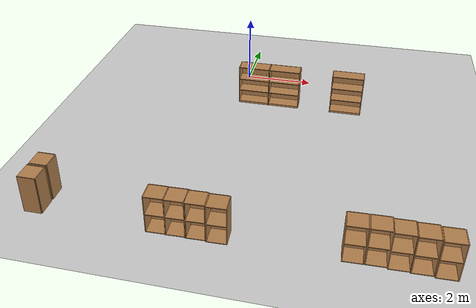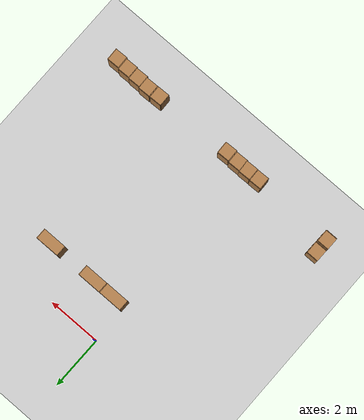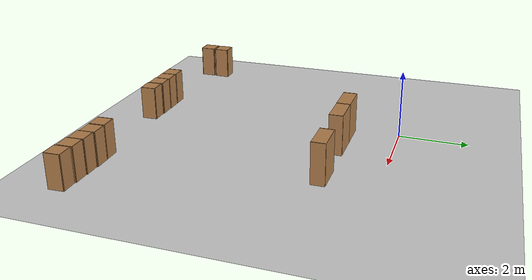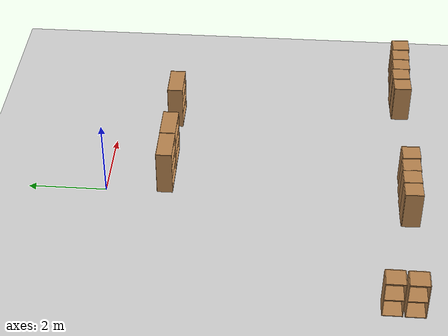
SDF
<sdf version="1.7">
 <world name="default">
  <model name="ground_plane">
   <static>1</static>
   <link name="link">
    <collision name="collision">
     <geometry><plane><normal>0 0 1</normal><size>100 100</size></plane></geometry>
     <surface>
      <contact><collide_bitmask>65535</collide_bitmask></contact>
      <friction><ode><mu>100</mu><mu2>50</mu2></ode></friction>
     </surface>
    </collision>
    <visual name="visual">
     <cast_shadows>0</cast_shadows>
     <geometry><plane><normal>0 0 1</normal><size>100 100</size></plane></geometry>
     <material>
      <script><uri>file://media/materials/scripts/gazebo.material</uri><name>Gazebo/Grey</name></script>
     </material>
    </visual>
   </link>
  </model>
  <model name="cabinet">
   <static>1</static>
   <link name="cabinet_bottom_plate">
    <inertial>
     <pose>0 0 -1 0 -0 0</pose>
     <inertia><ixx>2.05</ixx><ixy>0</ixy><ixz>0</ixz><iyy>2.05</iyy><iyz>0</iyz><izz>2.05</izz></inertia>
     <mass>25</mass>
    </inertial>
    <collision name="cabinet_bottom_plate_geom">
     <pose>0 0 0.01 0 -0 0</pose>
     <geometry><box><size>0.45 0.45 0.02</size></box></geometry>
    </collision>
    <visual name="cabinet_bottom_plate_geom_visual">
     <pose>0 0 0.01 0 -0 0</pose>
     <geometry><box><size>0.45 0.45 0.02</size></box></geometry>
     <material>
      <script><uri>file://media/materials/scripts/gazebo.material</uri><name>Gazebo/Wood</name></script>
     </material>
    </visual>
    <collision name="cabinet_bottom_plate_geom_cabinet_back_plate">
     <pose>0.235 0 0.51 0 -0 0</pose>
     <geometry><box><size>0.02 0.45 1.02</size></box></geometry>
    </collision>
    <visual name="cabinet_bottom_plate_geom_cabinet_back_plate_visual">
     <pose>0.235 0 0.51 0 -0 0</pose>
     <geometry><box><size>0.02 0.45 1.02</size></box></geometry>
     <material>
      <script><uri>file://media/materials/scripts/gazebo.material</uri><name>Gazebo/Wood</name></script>
     </material>
    </visual>
    <collision name="cabinet_bottom_plate_geom_cabinet_left_plate">
     <pose>0 0.235 0.51 0 -0 0</pose>
     <geometry><box><size>0.45 0.02 1.02</size></box></geometry>
    </collision>
    <visual name="cabinet_bottom_plate_geom_cabinet_left_plate_visual">
     <pose>0 0.235 0.51 0 -0 0</pose>
     <geometry><box><size>0.45 0.02 1.02</size></box></geometry>
     <material>
      <script><uri>file://media/materials/scripts/gazebo.material</uri><name>Gazebo/Wood</name></script>
     </material>
    </visual>
    <collision name="cabinet_bottom_plate_geom_cabinet_middle_plate">
     <pose>0 0 0.51 0 -0 0</pose>
     <geometry><box><size>0.45 0.45 0.02</size></box></geometry>
    </collision>
    <visual name="cabinet_bottom_plate_geom_cabinet_middle_plate_visual">
     <pose>0 0 0.51 0 -0 0</pose>
     <geometry><box><size>0.45 0.45 0.02</size></box></geometry>
     <material>
      <script><uri>file://media/materials/scripts/gazebo.material</uri><name>Gazebo/Wood</name></script>
     </material>
    </visual>
    <collision name="cabinet_bottom_plate_geom_cabinet_right_plate">
     <pose>0 -0.235 0.51 0 -0 0</pose>
     <geometry><box><size>0.45 0.02 1.02</size></box></geometry>
    </collision>
    <visual name="cabinet_bottom_plate_geom_cabinet_right_plate_visual">
     <pose>0 -0.235 0.51 0 -0 0</pose>
     <geometry><box><size>0.45 0.02 1.02</size></box></geometry>
     <material>
      <script><uri>file://media/materials/scripts/gazebo.material</uri><name>Gazebo/Wood</name></script>
     </material>
    </visual>
    <collision name="cabinet_bottom_plate_geom_cabinet_top_plate">
     <pose>0 0 1.01 0 -0 0</pose>
     <geometry><box><size>0.45 0.45 0.02</size></box></geometry>
    </collision>
    <visual name="cabinet_bottom_plate_geom_cabinet_top_plate_visual">
     <pose>0 0 1.01 0 -0 0</pose>
     <geometry><box><size>0.45 0.45 0.02</size></box></geometry>
     <material>
      <script><uri>file://media/materials/scripts/gazebo.material</uri><name>Gazebo/Wood</name></script>
     </material>
    </visual>
   </link>
   <pose>-3.67458 -7.64676 0 0 -0 0</pose>
  </model>
  <model name="cabinet_clone">
   <static>1</static>
   <link name="cabinet_bottom_plate">
    <inertial>
     <pose>0 0 -1 0 -0 0</pose>
     <inertia><ixx>2.05</ixx><ixy>0</ixy><ixz>0</ixz><iyy>2.05</iyy><iyz>0</iyz><izz>2.05</izz></inertia>
     <mass>25</mass>
    </inertial>
    <collision name="cabinet_bottom_plate_geom">
     <pose>0 0 0.01 0 -0 0</pose>
     <geometry><box><size>0.45 0.45 0.02</size></box></geometry>
    </collision>
    <visual name="cabinet_bottom_plate_geom_visual">
     <pose>0 0 0.01 0 -0 0</pose>
     <geometry><box><size>0.45 0.45 0.02</size></box></geometry>
     <material>
      <script><uri>file://media/materials/scripts/gazebo.material</uri><name>Gazebo/Wood</name></script>
     </material>
    </visual>
    <collision name="cabinet_bottom_plate_geom_cabinet_back_plate">
     <pose>0.235 0 0.51 0 -0 0</pose>
     <geometry><box><size>0.02 0.45 1.02</size></box></geometry>
    </collision>
    <visual name="cabinet_bottom_plate_geom_cabinet_back_plate_visual">
     <pose>0.235 0 0.51 0 -0 0</pose>
     <geometry><box><size>0.02 0.45 1.02</size></box></geometry>
     <material>
      <script><uri>file://media/materials/scripts/gazebo.material</uri><name>Gazebo/Wood</name></script>
     </material>
    </visual>
    <collision name="cabinet_bottom_plate_geom_cabinet_left_plate">
     <pose>0 0.235 0.51 0 -0 0</pose>
     <geometry><box><size>0.45 0.02 1.02</size></box></geometry>
    </collision>
    <visual name="cabinet_bottom_plate_geom_cabinet_left_plate_visual">
     <pose>0 0.235 0.51 0 -0 0</pose>
     <geometry><box><size>0.45 0.02 1.02</size></box></geometry>
     <material>
      <script><uri>file://media/materials/scripts/gazebo.material</uri><name>Gazebo/Wood</name></script>
     </material>
    </visual>
    <collision name="cabinet_bottom_plate_geom_cabinet_middle_plate">
     <pose>0 0 0.51 0 -0 0</pose>
     <geometry><box><size>0.45 0.45 0.02</size></box></geometry>
    </collision>
    <visual name="cabinet_bottom_plate_geom_cabinet_middle_plate_visual">
     <pose>0 0 0.51 0 -0 0</pose>
     <geometry><box><size>0.45 0.45 0.02</size></box></geometry>
     <material>
      <script><uri>file://media/materials/scripts/gazebo.material</uri><name>Gazebo/Wood</name></script>
     </material>
    </visual>
    <collision name="cabinet_bottom_plate_geom_cabinet_right_plate">
     <pose>0 -0.235 0.51 0 -0 0</pose>
     <geometry><box><size>0.45 0.02 1.02</size></box></geometry>
    </collision>
    <visual name="cabinet_bottom_plate_geom_cabinet_right_plate_visual">
     <pose>0 -0.235 0.51 0 -0 0</pose>
     <geometry><box><size>0.45 0.02 1.02</size></box></geometry>
     <material>
      <script><uri>file://media/materials/scripts/gazebo.material</uri><name>Gazebo/Wood</name></script>
     </material>
    </visual>
    <collision name="cabinet_bottom_plate_geom_cabinet_top_plate">
     <pose>0 0 1.01 0 -0 0</pose>
     <geometry><box><size>0.45 0.45 0.02</size></box></geometry>
    </collision>
    <visual name="cabinet_bottom_plate_geom_cabinet_top_plate_visual">
     <pose>0 0 1.01 0 -0 0</pose>
     <geometry><box><size>0.45 0.45 0.02</size></box></geometry>
     <material>
      <script><uri>file://media/materials/scripts/gazebo.material</uri><name>Gazebo/Wood</name></script>
     </material>
    </visual>
   </link>
   <pose>-3.66557 -7.11743 0 0 -0 0</pose>
  </model>
  <model name="bookshelf_clone_8">
   <static>1</static>
   <link name="link">
    <inertial><mass>1</mass></inertial>
    <collision name="back">
     <pose>0 0.005 0.6 0 -0 0</pose>
     <geometry><box><size>0.9 0.01 1.2</size></box></geometry>
    </collision>
    <visual name="visual1">
     <pose>0 0.005 0.6 0 -0 0</pose>
     <geometry><box><size>0.9 0.01 1.2</size></box></geometry>
     <material>
      <script><uri>file://media/materials/scripts/gazebo.material</uri><name>Gazebo/Wood</name></script>
     </material>
    </visual>
    <collision name="left_side">
     <pose>0.45 -0.195 0.6 0 -0 0</pose>
     <geometry><box><size>0.02 0.4 1.2</size></box></geometry>
    </collision>
    <visual name="visual2">
     <pose>0.45 -0.195 0.6 0 -0 0</pose>
     <geometry><box><size>0.02 0.4 1.2</size></box></geometry>
     <material>
      <script><uri>file://media/materials/scripts/gazebo.material</uri><name>Gazebo/Wood</name></script>
     </material>
    </visual>
    <collision name="right_side">
     <pose>-0.45 -0.195 0.6 0 -0 0</pose>
     <geometry><box><size>0.02 0.4 1.2</size></box></geometry>
    </collision>
    <visual name="visual3">
     <pose>-0.45 -0.195 0.6 0 -0 0</pose>
     <geometry><box><size>0.02 0.4 1.2</size></box></geometry>
     <material>
      <script><uri>file://media/materials/scripts/gazebo.material</uri><name>Gazebo/Wood</name></script>
     </material>
    </visual>
    <collision name="bottom">
     <pose>0 -0.195 0.03 0 -0 0</pose>
     <geometry><box><size>0.88 0.4 0.06</size></box></geometry>
    </collision>
    <visual name="visual4">
     <pose>0 -0.195 0.03 0 -0 0</pose>
     <geometry><box><size>0.88 0.4 0.06</size></box></geometry>
     <material>
      <script><uri>file://media/materials/scripts/gazebo.material</uri><name>Gazebo/Wood</name></script>
     </material>
    </visual>
    <collision name="top">
     <pose>0 -0.195 1.19 0 -0 0</pose>
     <geometry><box><size>0.88 0.4 0.02</size></box></geometry>
    </collision>
    <visual name="visual5">
     <pose>0 -0.195 1.19 0 -0 0</pose>
     <geometry><box><size>0.88 0.4 0.02</size></box></geometry>
     <material>
      <script><uri>file://media/materials/scripts/gazebo.material</uri><name>Gazebo/Wood</name></script>
     </material>
    </visual>
    <collision name="low_shelf">
     <pose>0 -0.195 0.43 0 -0 0</pose>
     <geometry><box><size>0.88 0.4 0.02</size></box></geometry>
    </collision>
    <visual name="visual6">
     <pose>0 -0.195 0.43 0 -0 0</pose>
     <geometry><box><size>0.88 0.4 0.02</size></box></geometry>
     <material>
      <script><uri>file://media/materials/scripts/gazebo.material</uri><name>Gazebo/Wood</name></script>
     </material>
    </visual>
    <collision name="high_shelf">
     <pose>0 -0.195 0.8 0 -0 0</pose>
     <geometry><box><size>0.88 0.4 0.02</size></box></geometry>
    </collision>
    <visual name="visual7">
     <pose>0 -0.195 0.8 0 -0 0</pose>
     <geometry><box><size>0.88 0.4 0.02</size></box></geometry>
     <material>
      <script><uri>file://media/materials/scripts/gazebo.material</uri><name>Gazebo/Wood</name></script>
     </material>
    </visual>
   </link>
   <pose>0.461095 -1.31411 0.008039 0 -0 0</pose>
  </model>
  <model name="bookshelf_clone_9">
   <static>1</static>
   <link name="link">
    <inertial><mass>1</mass></inertial>
    <collision name="back">
     <pose>0 0.005 0.6 0 -0 0</pose>
     <geometry><box><size>0.9 0.01 1.2</size></box></geometry>
    </collision>
    <visual name="visual1">
     <pose>0 0.005 0.6 0 -0 0</pose>
     <geometry><box><size>0.9 0.01 1.2</size></box></geometry>
     <material>
      <script><uri>file://media/materials/scripts/gazebo.material</uri><name>Gazebo/Wood</name></script>
     </material>
    </visual>
    <collision name="left_side">
     <pose>0.45 -0.195 0.6 0 -0 0</pose>
     <geometry><box><size>0.02 0.4 1.2</size></box></geometry>
    </collision>
    <visual name="visual2">
     <pose>0.45 -0.195 0.6 0 -0 0</pose>
     <geometry><box><size>0.02 0.4 1.2</size></box></geometry>
     <material>
      <script><uri>file://media/materials/scripts/gazebo.material</uri><name>Gazebo/Wood</name></script>
     </material>
    </visual>
    <collision name="right_side">
     <pose>-0.45 -0.195 0.6 0 -0 0</pose>
     <geometry><box><size>0.02 0.4 1.2</size></box></geometry>
    </collision>
    <visual name="visual3">
     <pose>-0.45 -0.195 0.6 0 -0 0</pose>
     <geometry><box><size>0.02 0.4 1.2</size></box></geometry>
     <material>
      <script><uri>file://media/materials/scripts/gazebo.material</uri><name>Gazebo/Wood</name></script>
     </material>
    </visual>
    <collision name="bottom">
     <pose>0 -0.195 0.03 0 -0 0</pose>
     <geometry><box><size>0.88 0.4 0.06</size></box></geometry>
    </collision>
    <visual name="visual4">
     <pose>0 -0.195 0.03 0 -0 0</pose>
     <geometry><box><size>0.88 0.4 0.06</size></box></geometry>
     <material>
      <script><uri>file://media/materials/scripts/gazebo.material</uri><name>Gazebo/Wood</name></script>
     </material>
    </visual>
    <collision name="top">
     <pose>0 -0.195 1.19 0 -0 0</pose>
     <geometry><box><size>0.88 0.4 0.02</size></box></geometry>
    </collision>
    <visual name="visual5">
     <pose>0 -0.195 1.19 0 -0 0</pose>
     <geometry><box><size>0.88 0.4 0.02</size></box></geometry>
     <material>
      <script><uri>file://media/materials/scripts/gazebo.material</uri><name>Gazebo/Wood</name></script>
     </material>
    </visual>
    <collision name="low_shelf">
     <pose>0 -0.195 0.43 0 -0 0</pose>
     <geometry><box><size>0.88 0.4 0.02</size></box></geometry>
    </collision>
    <visual name="visual6">
     <pose>0 -0.195 0.43 0 -0 0</pose>
     <geometry><box><size>0.88 0.4 0.02</size></box></geometry>
     <material>
      <script><uri>file://media/materials/scripts/gazebo.material</uri><name>Gazebo/Wood</name></script>
     </material>
    </visual>
    <collision name="high_shelf">
     <pose>0 -0.195 0.8 0 -0 0</pose>
     <geometry><box><size>0.88 0.4 0.02</size></box></geometry>
    </collision>
    <visual name="visual7">
     <pose>0 -0.195 0.8 0 -0 0</pose>
     <geometry><box><size>0.88 0.4 0.02</size></box></geometry>
     <material>
      <script><uri>file://media/materials/scripts/gazebo.material</uri><name>Gazebo/Wood</name></script>
     </material>
    </visual>
   </link>
   <pose>1.37376 -1.31077 0.008039 0 -0 0</pose>
  </model>
  <model name="bookshelf_clone_11">
   <static>1</static>
   <link name="link">
    <inertial><mass>1</mass></inertial>
    <collision name="back">
     <pose>0 0.005 0.6 0 -0 0</pose>
     <geometry><box><size>0.9 0.01 1.2</size></box></geometry>
    </collision>
    <visual name="visual1">
     <pose>0 0.005 0.6 0 -0 0</pose>
     <geometry><box><size>0.9 0.01 1.2</size></box></geometry>
     <material>
      <script><uri>file://media/materials/scripts/gazebo.material</uri><name>Gazebo/Wood</name></script>
     </material>
    </visual>
    <collision name="left_side">
     <pose>0.45 -0.195 0.6 0 -0 0</pose>
     <geometry><box><size>0.02 0.4 1.2</size></box></geometry>
    </collision>
    <visual name="visual2">
     <pose>0.45 -0.195 0.6 0 -0 0</pose>
     <geometry><box><size>0.02 0.4 1.2</size></box></geometry>
     <material>
      <script><uri>file://media/materials/scripts/gazebo.material</uri><name>Gazebo/Wood</name></script>
     </material>
    </visual>
    <collision name="right_side">
     <pose>-0.45 -0.195 0.6 0 -0 0</pose>
     <geometry><box><size>0.02 0.4 1.2</size></box></geometry>
    </collision>
    <visual name="visual3">
     <pose>-0.45 -0.195 0.6 0 -0 0</pose>
     <geometry><box><size>0.02 0.4 1.2</size></box></geometry>
     <material>
      <script><uri>file://media/materials/scripts/gazebo.material</uri><name>Gazebo/Wood</name></script>
     </material>
    </visual>
    <collision name="bottom">
     <pose>0 -0.195 0.03 0 -0 0</pose>
     <geometry><box><size>0.88 0.4 0.06</size></box></geometry>
    </collision>
    <visual name="visual4">
     <pose>0 -0.195 0.03 0 -0 0</pose>
     <geometry><box><size>0.88 0.4 0.06</size></box></geometry>
     <material>
      <script><uri>file://media/materials/scripts/gazebo.material</uri><name>Gazebo/Wood</name></script>
     </material>
    </visual>
    <collision name="top">
     <pose>0 -0.195 1.19 0 -0 0</pose>
     <geometry><box><size>0.88 0.4 0.02</size></box></geometry>
    </collision>
    <visual name="visual5">
     <pose>0 -0.195 1.19 0 -0 0</pose>
     <geometry><box><size>0.88 0.4 0.02</size></box></geometry>
     <material>
      <script><uri>file://media/materials/scripts/gazebo.material</uri><name>Gazebo/Wood</name></script>
     </material>
    </visual>
    <collision name="low_shelf">
     <pose>0 -0.195 0.43 0 -0 0</pose>
     <geometry><box><size>0.88 0.4 0.02</size></box></geometry>
    </collision>
    <visual name="visual6">
     <pose>0 -0.195 0.43 0 -0 0</pose>
     <geometry><box><size>0.88 0.4 0.02</size></box></geometry>
     <material>
      <script><uri>file://media/materials/scripts/gazebo.material</uri><name>Gazebo/Wood</name></script>
     </material>
    </visual>
    <collision name="high_shelf">
     <pose>0 -0.195 0.8 0 -0 0</pose>
     <geometry><box><size>0.88 0.4 0.02</size></box></geometry>
    </collision>
    <visual name="visual7">
     <pose>0 -0.195 0.8 0 -0 0</pose>
     <geometry><box><size>0.88 0.4 0.02</size></box></geometry>
     <material>
      <script><uri>file://media/materials/scripts/gazebo.material</uri><name>Gazebo/Wood</name></script>
     </material>
    </visual>
   </link>
   <pose>3.24059 -1.30716 0.008039 0 -0 0</pose>
  </model>
  <model name="cabinet_0">
   <static>1</static>
   <link name="cabinet_bottom_plate">
    <inertial>
     <pose>0 0 -1 0 -0 0</pose>
     <inertia><ixx>2.05</ixx><ixy>0</ixy><ixz>0</ixz><iyy>2.05</iyy><iyz>0</iyz><izz>2.05</izz></inertia>
     <mass>25</mass>
    </inertial>
    <collision name="cabinet_bottom_plate_geom">
     <pose>0 0 0.01 0 -0 0</pose>
     <geometry><box><size>0.45 0.45 0.02</size></box></geometry>
    </collision>
    <visual name="cabinet_bottom_plate_geom_visual">
     <pose>0 0 0.01 0 -0 0</pose>
     <geometry><box><size>0.45 0.45 0.02</size></box></geometry>
     <material>
      <script><uri>file://media/materials/scripts/gazebo.material</uri><name>Gazebo/Wood</name></script>
     </material>
    </visual>
    <collision name="cabinet_bottom_plate_geom_cabinet_back_plate">
     <pose>0.235 0 0.51 0 -0 0</pose>
     <geometry><box><size>0.02 0.45 1.02</size></box></geometry>
    </collision>
    <visual name="cabinet_bottom_plate_geom_cabinet_back_plate_visual">
     <pose>0.235 0 0.51 0 -0 0</pose>
     <geometry><box><size>0.02 0.45 1.02</size></box></geometry>
     <material>
      <script><uri>file://media/materials/scripts/gazebo.material</uri><name>Gazebo/Wood</name></script>
     </material>
    </visual>
    <collision name="cabinet_bottom_plate_geom_cabinet_left_plate">
     <pose>0 0.235 0.51 0 -0 0</pose>
     <geometry><box><size>0.45 0.02 1.02</size></box></geometry>
    </collision>
    <visual name="cabinet_bottom_plate_geom_cabinet_left_plate_visual">
     <pose>0 0.235 0.51 0 -0 0</pose>
     <geometry><box><size>0.45 0.02 1.02</size></box></geometry>
     <material>
      <script><uri>file://media/materials/scripts/gazebo.material</uri><name>Gazebo/Wood</name></script>
     </material>
    </visual>
    <collision name="cabinet_bottom_plate_geom_cabinet_middle_plate">
     <pose>0 0 0.51 0 -0 0</pose>
     <geometry><box><size>0.45 0.45 0.02</size></box></geometry>
    </collision>
    <visual name="cabinet_bottom_plate_geom_cabinet_middle_plate_visual">
     <pose>0 0 0.51 0 -0 0</pose>
     <geometry><box><size>0.45 0.45 0.02</size></box></geometry>
     <material>
      <script><uri>file://media/materials/scripts/gazebo.material</uri><name>Gazebo/Wood</name></script>
     </material>
    </visual>
    <collision name="cabinet_bottom_plate_geom_cabinet_right_plate">
     <pose>0 -0.235 0.51 0 -0 0</pose>
     <geometry><box><size>0.45 0.02 1.02</size></box></geometry>
    </collision>
    <visual name="cabinet_bottom_plate_geom_cabinet_right_plate_visual">
     <pose>0 -0.235 0.51 0 -0 0</pose>
     <geometry><box><size>0.45 0.02 1.02</size></box></geometry>
     <material>
      <script><uri>file://media/materials/scripts/gazebo.material</uri><name>Gazebo/Wood</name></script>
     </material>
    </visual>
    <collision name="cabinet_bottom_plate_geom_cabinet_top_plate">
     <pose>0 0 1.01 0 -0 0</pose>
     <geometry><box><size>0.45 0.45 0.02</size></box></geometry>
    </collision>
    <visual name="cabinet_bottom_plate_geom_cabinet_top_plate_visual">
     <pose>0 0 1.01 0 -0 0</pose>
     <geometry><box><size>0.45 0.45 0.02</size></box></geometry>
     <material>
      <script><uri>file://media/materials/scripts/gazebo.material</uri><name>Gazebo/Wood</name></script>
     </material>
    </visual>
   </link>
   <pose>5.72481 -7.67793 0 0 -0 1.60076</pose>
  </model>
  <model name="cabinet_0_clone">
   <static>1</static>
   <link name="cabinet_bottom_plate">
    <inertial>
     <pose>0 0 -1 0 -0 0</pose>
     <inertia><ixx>2.05</ixx><ixy>0</ixy><ixz>0</ixz><iyy>2.05</iyy><iyz>0</iyz><izz>2.05</izz></inertia>
     <mass>25</mass>
    </inertial>
    <collision name="cabinet_bottom_plate_geom">
     <pose>0 0 0.01 0 -0 0</pose>
     <geometry><box><size>0.45 0.45 0.02</size></box></geometry>
    </collision>
    <visual name="cabinet_bottom_plate_geom_visual">
     <pose>0 0 0.01 0 -0 0</pose>
     <geometry><box><size>0.45 0.45 0.02</size></box></geometry>
     <material>
      <script><uri>file://media/materials/scripts/gazebo.material</uri><name>Gazebo/Wood</name></script>
     </material>
    </visual>
    <collision name="cabinet_bottom_plate_geom_cabinet_back_plate">
     <pose>0.235 0 0.51 0 -0 0</pose>
     <geometry><box><size>0.02 0.45 1.02</size></box></geometry>
    </collision>
    <visual name="cabinet_bottom_plate_geom_cabinet_back_plate_visual">
     <pose>0.235 0 0.51 0 -0 0</pose>
     <geometry><box><size>0.02 0.45 1.02</size></box></geometry>
     <material>
      <script><uri>file://media/materials/scripts/gazebo.material</uri><name>Gazebo/Wood</name></script>
     </material>
    </visual>
    <collision name="cabinet_bottom_plate_geom_cabinet_left_plate">
     <pose>0 0.235 0.51 0 -0 0</pose>
     <geometry><box><size>0.45 0.02 1.02</size></box></geometry>
    </collision>
    <visual name="cabinet_bottom_plate_geom_cabinet_left_plate_visual">
     <pose>0 0.235 0.51 0 -0 0</pose>
     <geometry><box><size>0.45 0.02 1.02</size></box></geometry>
     <material>
      <script><uri>file://media/materials/scripts/gazebo.material</uri><name>Gazebo/Wood</name></script>
     </material>
    </visual>
    <collision name="cabinet_bottom_plate_geom_cabinet_middle_plate">
     <pose>0 0 0.51 0 -0 0</pose>
     <geometry><box><size>0.45 0.45 0.02</size></box></geometry>
    </collision>
    <visual name="cabinet_bottom_plate_geom_cabinet_middle_plate_visual">
     <pose>0 0 0.51 0 -0 0</pose>
     <geometry><box><size>0.45 0.45 0.02</size></box></geometry>
     <material>
      <script><uri>file://media/materials/scripts/gazebo.material</uri><name>Gazebo/Wood</name></script>
     </material>
    </visual>
    <collision name="cabinet_bottom_plate_geom_cabinet_right_plate">
     <pose>0 -0.235 0.51 0 -0 0</pose>
     <geometry><box><size>0.45 0.02 1.02</size></box></geometry>
    </collision>
    <visual name="cabinet_bottom_plate_geom_cabinet_right_plate_visual">
     <pose>0 -0.235 0.51 0 -0 0</pose>
     <geometry><box><size>0.45 0.02 1.02</size></box></geometry>
     <material>
      <script><uri>file://media/materials/scripts/gazebo.material</uri><name>Gazebo/Wood</name></script>
     </material>
    </visual>
    <collision name="cabinet_bottom_plate_geom_cabinet_top_plate">
     <pose>0 0 1.01 0 -0 0</pose>
     <geometry><box><size>0.45 0.45 0.02</size></box></geometry>
    </collision>
    <visual name="cabinet_bottom_plate_geom_cabinet_top_plate_visual">
     <pose>0 0 1.01 0 -0 0</pose>
     <geometry><box><size>0.45 0.45 0.02</size></box></geometry>
     <material>
      <script><uri>file://media/materials/scripts/gazebo.material</uri><name>Gazebo/Wood</name></script>
     </material>
    </visual>
   </link>
   <pose>5.23364 -7.65589 0 0 -0 1.60076</pose>
  </model>
  <model name="cabinet_0_clone_0">
   <static>1</static>
   <link name="cabinet_bottom_plate">
    <inertial>
     <pose>0 0 -1 0 -0 0</pose>
     <inertia><ixx>2.05</ixx><ixy>0</ixy><ixz>0</ixz><iyy>2.05</iyy><iyz>0</iyz><izz>2.05</izz></inertia>
     <mass>25</mass>
    </inertial>
    <collision name="cabinet_bottom_plate_geom">
     <pose>0 0 0.01 0 -0 0</pose>
     <geometry><box><size>0.45 0.45 0.02</size></box></geometry>
    </collision>
    <visual name="cabinet_bottom_plate_geom_visual">
     <pose>0 0 0.01 0 -0 0</pose>
     <geometry><box><size>0.45 0.45 0.02</size></box></geometry>
     <material>
      <script><uri>file://media/materials/scripts/gazebo.material</uri><name>Gazebo/Wood</name></script>
     </material>
    </visual>
    <collision name="cabinet_bottom_plate_geom_cabinet_back_plate">
     <pose>0.235 0 0.51 0 -0 0</pose>
     <geometry><box><size>0.02 0.45 1.02</size></box></geometry>
    </collision>
    <visual name="cabinet_bottom_plate_geom_cabinet_back_plate_visual">
     <pose>0.235 0 0.51 0 -0 0</pose>
     <geometry><box><size>0.02 0.45 1.02</size></box></geometry>
     <material>
      <script><uri>file://media/materials/scripts/gazebo.material</uri><name>Gazebo/Wood</name></script>
     </material>
    </visual>
    <collision name="cabinet_bottom_plate_geom_cabinet_left_plate">
     <pose>0 0.235 0.51 0 -0 0</pose>
     <geometry><box><size>0.45 0.02 1.02</size></box></geometry>
    </collision>
    <visual name="cabinet_bottom_plate_geom_cabinet_left_plate_visual">
     <pose>0 0.235 0.51 0 -0 0</pose>
     <geometry><box><size>0.45 0.02 1.02</size></box></geometry>
     <material>
      <script><uri>file://media/materials/scripts/gazebo.material</uri><name>Gazebo/Wood</name></script>
     </material>
    </visual>
    <collision name="cabinet_bottom_plate_geom_cabinet_middle_plate">
     <pose>0 0 0.51 0 -0 0</pose>
     <geometry><box><size>0.45 0.45 0.02</size></box></geometry>
    </collision>
    <visual name="cabinet_bottom_plate_geom_cabinet_middle_plate_visual">
     <pose>0 0 0.51 0 -0 0</pose>
     <geometry><box><size>0.45 0.45 0.02</size></box></geometry>
     <material>
      <script><uri>file://media/materials/scripts/gazebo.material</uri><name>Gazebo/Wood</name></script>
     </material>
    </visual>
    <collision name="cabinet_bottom_plate_geom_cabinet_right_plate">
     <pose>0 -0.235 0.51 0 -0 0</pose>
     <geometry><box><size>0.45 0.02 1.02</size></box></geometry>
    </collision>
    <visual name="cabinet_bottom_plate_geom_cabinet_right_plate_visual">
     <pose>0 -0.235 0.51 0 -0 0</pose>
     <geometry><box><size>0.45 0.02 1.02</size></box></geometry>
     <material>
      <script><uri>file://media/materials/scripts/gazebo.material</uri><name>Gazebo/Wood</name></script>
     </material>
    </visual>
    <collision name="cabinet_bottom_plate_geom_cabinet_top_plate">
     <pose>0 0 1.01 0 -0 0</pose>
     <geometry><box><size>0.45 0.45 0.02</size></box></geometry>
    </collision>
    <visual name="cabinet_bottom_plate_geom_cabinet_top_plate_visual">
     <pose>0 0 1.01 0 -0 0</pose>
     <geometry><box><size>0.45 0.45 0.02</size></box></geometry>
     <material>
      <script><uri>file://media/materials/scripts/gazebo.material</uri><name>Gazebo/Wood</name></script>
     </material>
    </visual>
   </link>
   <pose>4.75558 -7.64517 0 0 -0 1.60076</pose>
  </model>
  <model name="cabinet_0_clone_1">
   <static>1</static>
   <link name="cabinet_bottom_plate">
    <inertial>
     <pose>0 0 -1 0 -0 0</pose>
     <inertia><ixx>2.05</ixx><ixy>0</ixy><ixz>0</ixz><iyy>2.05</iyy><iyz>0</iyz><izz>2.05</izz></inertia>
     <mass>25</mass>
    </inertial>
    <collision name="cabinet_bottom_plate_geom">
     <pose>0 0 0.01 0 -0 0</pose>
     <geometry><box><size>0.45 0.45 0.02</size></box></geometry>
    </collision>
    <visual name="cabinet_bottom_plate_geom_visual">
     <pose>0 0 0.01 0 -0 0</pose>
     <geometry><box><size>0.45 0.45 0.02</size></box></geometry>
     <material>
      <script><uri>file://media/materials/scripts/gazebo.material</uri><name>Gazebo/Wood</name></script>
     </material>
    </visual>
    <collision name="cabinet_bottom_plate_geom_cabinet_back_plate">
     <pose>0.235 0 0.51 0 -0 0</pose>
     <geometry><box><size>0.02 0.45 1.02</size></box></geometry>
    </collision>
    <visual name="cabinet_bottom_plate_geom_cabinet_back_plate_visual">
     <pose>0.235 0 0.51 0 -0 0</pose>
     <geometry><box><size>0.02 0.45 1.02</size></box></geometry>
     <material>
      <script><uri>file://media/materials/scripts/gazebo.material</uri><name>Gazebo/Wood</name></script>
     </material>
    </visual>
    <collision name="cabinet_bottom_plate_geom_cabinet_left_plate">
     <pose>0 0.235 0.51 0 -0 0</pose>
     <geometry><box><size>0.45 0.02 1.02</size></box></geometry>
    </collision>
    <visual name="cabinet_bottom_plate_geom_cabinet_left_plate_visual">
     <pose>0 0.235 0.51 0 -0 0</pose>
     <geometry><box><size>0.45 0.02 1.02</size></box></geometry>
     <material>
      <script><uri>file://media/materials/scripts/gazebo.material</uri><name>Gazebo/Wood</name></script>
     </material>
    </visual>
    <collision name="cabinet_bottom_plate_geom_cabinet_middle_plate">
     <pose>0 0 0.51 0 -0 0</pose>
     <geometry><box><size>0.45 0.45 0.02</size></box></geometry>
    </collision>
    <visual name="cabinet_bottom_plate_geom_cabinet_middle_plate_visual">
     <pose>0 0 0.51 0 -0 0</pose>
     <geometry><box><size>0.45 0.45 0.02</size></box></geometry>
     <material>
      <script><uri>file://media/materials/scripts/gazebo.material</uri><name>Gazebo/Wood</name></script>
     </material>
    </visual>
    <collision name="cabinet_bottom_plate_geom_cabinet_right_plate">
     <pose>0 -0.235 0.51 0 -0 0</pose>
     <geometry><box><size>0.45 0.02 1.02</size></box></geometry>
    </collision>
    <visual name="cabinet_bottom_plate_geom_cabinet_right_plate_visual">
     <pose>0 -0.235 0.51 0 -0 0</pose>
     <geometry><box><size>0.45 0.02 1.02</size></box></geometry>
     <material>
      <script><uri>file://media/materials/scripts/gazebo.material</uri><name>Gazebo/Wood</name></script>
     </material>
    </visual>
    <collision name="cabinet_bottom_plate_geom_cabinet_top_plate">
     <pose>0 0 1.01 0 -0 0</pose>
     <geometry><box><size>0.45 0.45 0.02</size></box></geometry>
    </collision>
    <visual name="cabinet_bottom_plate_geom_cabinet_top_plate_visual">
     <pose>0 0 1.01 0 -0 0</pose>
     <geometry><box><size>0.45 0.45 0.02</size></box></geometry>
     <material>
      <script><uri>file://media/materials/scripts/gazebo.material</uri><name>Gazebo/Wood</name></script>
     </material>
    </visual>
   </link>
   <pose>4.28556 -7.62075 0 0 -0 1.60076</pose>
  </model>
  <model name="cabinet_0_clone_2">
   <static>1</static>
   <link name="cabinet_bottom_plate">
    <inertial>
     <pose>0 0 -1 0 -0 0</pose>
     <inertia><ixx>2.05</ixx><ixy>0</ixy><ixz>0</ixz><iyy>2.05</iyy><iyz>0</iyz><izz>2.05</izz></inertia>
     <mass>25</mass>
    </inertial>
    <collision name="cabinet_bottom_plate_geom">
     <pose>0 0 0.01 0 -0 0</pose>
     <geometry><box><size>0.45 0.45 0.02</size></box></geometry>
    </collision>
    <visual name="cabinet_bottom_plate_geom_visual">
     <pose>0 0 0.01 0 -0 0</pose>
     <geometry><box><size>0.45 0.45 0.02</size></box></geometry>
     <material>
      <script><uri>file://media/materials/scripts/gazebo.material</uri><name>Gazebo/Wood</name></script>
     </material>
    </visual>
    <collision name="cabinet_bottom_plate_geom_cabinet_back_plate">
     <pose>0.235 0 0.51 0 -0 0</pose>
     <geometry><box><size>0.02 0.45 1.02</size></box></geometry>
    </collision>
    <visual name="cabinet_bottom_plate_geom_cabinet_back_plate_visual">
     <pose>0.235 0 0.51 0 -0 0</pose>
     <geometry><box><size>0.02 0.45 1.02</size></box></geometry>
     <material>
      <script><uri>file://media/materials/scripts/gazebo.material</uri><name>Gazebo/Wood</name></script>
     </material>
    </visual>
    <collision name="cabinet_bottom_plate_geom_cabinet_left_plate">
     <pose>0 0.235 0.51 0 -0 0</pose>
     <geometry><box><size>0.45 0.02 1.02</size></box></geometry>
    </collision>
    <visual name="cabinet_bottom_plate_geom_cabinet_left_plate_visual">
     <pose>0 0.235 0.51 0 -0 0</pose>
     <geometry><box><size>0.45 0.02 1.02</size></box></geometry>
     <material>
      <script><uri>file://media/materials/scripts/gazebo.material</uri><name>Gazebo/Wood</name></script>
     </material>
    </visual>
    <collision name="cabinet_bottom_plate_geom_cabinet_middle_plate">
     <pose>0 0 0.51 0 -0 0</pose>
     <geometry><box><size>0.45 0.45 0.02</size></box></geometry>
    </collision>
    <visual name="cabinet_bottom_plate_geom_cabinet_middle_plate_visual">
     <pose>0 0 0.51 0 -0 0</pose>
     <geometry><box><size>0.45 0.45 0.02</size></box></geometry>
     <material>
      <script><uri>file://media/materials/scripts/gazebo.material</uri><name>Gazebo/Wood</name></script>
     </material>
    </visual>
    <collision name="cabinet_bottom_plate_geom_cabinet_right_plate">
     <pose>0 -0.235 0.51 0 -0 0</pose>
     <geometry><box><size>0.45 0.02 1.02</size></box></geometry>
    </collision>
    <visual name="cabinet_bottom_plate_geom_cabinet_right_plate_visual">
     <pose>0 -0.235 0.51 0 -0 0</pose>
     <geometry><box><size>0.45 0.02 1.02</size></box></geometry>
     <material>
      <script><uri>file://media/materials/scripts/gazebo.material</uri><name>Gazebo/Wood</name></script>
     </material>
    </visual>
    <collision name="cabinet_bottom_plate_geom_cabinet_top_plate">
     <pose>0 0 1.01 0 -0 0</pose>
     <geometry><box><size>0.45 0.45 0.02</size></box></geometry>
    </collision>
    <visual name="cabinet_bottom_plate_geom_cabinet_top_plate_visual">
     <pose>0 0 1.01 0 -0 0</pose>
     <geometry><box><size>0.45 0.45 0.02</size></box></geometry>
     <material>
      <script><uri>file://media/materials/scripts/gazebo.material</uri><name>Gazebo/Wood</name></script>
     </material>
    </visual>
   </link>
   <pose>3.79216 -7.6371 0 0 -0 1.60076</pose>
  </model>
  <model name="cabinet_0_clone_4">
   <static>1</static>
   <link name="cabinet_bottom_plate">
    <inertial>
     <pose>0 0 -1 0 -0 0</pose>
     <inertia><ixx>2.05</ixx><ixy>0</ixy><ixz>0</ixz><iyy>2.05</iyy><iyz>0</iyz><izz>2.05</izz></inertia>
     <mass>25</mass>
    </inertial>
    <collision name="cabinet_bottom_plate_geom">
     <pose>0 0 0.01 0 -0 0</pose>
     <geometry><box><size>0.45 0.45 0.02</size></box></geometry>
    </collision>
    <visual name="cabinet_bottom_plate_geom_visual">
     <pose>0 0 0.01 0 -0 0</pose>
     <geometry><box><size>0.45 0.45 0.02</size></box></geometry>
     <material>
      <script><uri>file://media/materials/scripts/gazebo.material</uri><name>Gazebo/Wood</name></script>
     </material>
    </visual>
    <collision name="cabinet_bottom_plate_geom_cabinet_back_plate">
     <pose>0.235 0 0.51 0 -0 0</pose>
     <geometry><box><size>0.02 0.45 1.02</size></box></geometry>
    </collision>
    <visual name="cabinet_bottom_plate_geom_cabinet_back_plate_visual">
     <pose>0.235 0 0.51 0 -0 0</pose>
     <geometry><box><size>0.02 0.45 1.02</size></box></geometry>
     <material>
      <script><uri>file://media/materials/scripts/gazebo.material</uri><name>Gazebo/Wood</name></script>
     </material>
    </visual>
    <collision name="cabinet_bottom_plate_geom_cabinet_left_plate">
     <pose>0 0.235 0.51 0 -0 0</pose>
     <geometry><box><size>0.45 0.02 1.02</size></box></geometry>
    </collision>
    <visual name="cabinet_bottom_plate_geom_cabinet_left_plate_visual">
     <pose>0 0.235 0.51 0 -0 0</pose>
     <geometry><box><size>0.45 0.02 1.02</size></box></geometry>
     <material>
      <script><uri>file://media/materials/scripts/gazebo.material</uri><name>Gazebo/Wood</name></script>
     </material>
    </visual>
    <collision name="cabinet_bottom_plate_geom_cabinet_middle_plate">
     <pose>0 0 0.51 0 -0 0</pose>
     <geometry><box><size>0.45 0.45 0.02</size></box></geometry>
    </collision>
    <visual name="cabinet_bottom_plate_geom_cabinet_middle_plate_visual">
     <pose>0 0 0.51 0 -0 0</pose>
     <geometry><box><size>0.45 0.45 0.02</size></box></geometry>
     <material>
      <script><uri>file://media/materials/scripts/gazebo.material</uri><name>Gazebo/Wood</name></script>
     </material>
    </visual>
    <collision name="cabinet_bottom_plate_geom_cabinet_right_plate">
     <pose>0 -0.235 0.51 0 -0 0</pose>
     <geometry><box><size>0.45 0.02 1.02</size></box></geometry>
    </collision>
    <visual name="cabinet_bottom_plate_geom_cabinet_right_plate_visual">
     <pose>0 -0.235 0.51 0 -0 0</pose>
     <geometry><box><size>0.45 0.02 1.02</size></box></geometry>
     <material>
      <script><uri>file://media/materials/scripts/gazebo.material</uri><name>Gazebo/Wood</name></script>
     </material>
    </visual>
    <collision name="cabinet_bottom_plate_geom_cabinet_top_plate">
     <pose>0 0 1.01 0 -0 0</pose>
     <geometry><box><size>0.45 0.45 0.02</size></box></geometry>
    </collision>
    <visual name="cabinet_bottom_plate_geom_cabinet_top_plate_visual">
     <pose>0 0 1.01 0 -0 0</pose>
     <geometry><box><size>0.45 0.45 0.02</size></box></geometry>
     <material>
      <script><uri>file://media/materials/scripts/gazebo.material</uri><name>Gazebo/Wood</name></script>
     </material>
    </visual>
   </link>
   <pose>0.813149 -7.71173 0 0 -0 1.60076</pose>
  </model>
  <model name="cabinet_0_clone_5">
   <static>1</static>
   <link name="cabinet_bottom_plate">
    <inertial>
     <pose>0 0 -1 0 -0 0</pose>
     <inertia><ixx>2.05</ixx><ixy>0</ixy><ixz>0</ixz><iyy>2.05</iyy><iyz>0</iyz><izz>2.05</izz></inertia>
     <mass>25</mass>
    </inertial>
    <collision name="cabinet_bottom_plate_geom">
     <pose>0 0 0.01 0 -0 0</pose>
     <geometry><box><size>0.45 0.45 0.02</size></box></geometry>
    </collision>
    <visual name="cabinet_bottom_plate_geom_visual">
     <pose>0 0 0.01 0 -0 0</pose>
     <geometry><box><size>0.45 0.45 0.02</size></box></geometry>
     <material>
      <script><uri>file://media/materials/scripts/gazebo.material</uri><name>Gazebo/Wood</name></script>
     </material>
    </visual>
    <collision name="cabinet_bottom_plate_geom_cabinet_back_plate">
     <pose>0.235 0 0.51 0 -0 0</pose>
     <geometry><box><size>0.02 0.45 1.02</size></box></geometry>
    </collision>
    <visual name="cabinet_bottom_plate_geom_cabinet_back_plate_visual">
     <pose>0.235 0 0.51 0 -0 0</pose>
     <geometry><box><size>0.02 0.45 1.02</size></box></geometry>
     <material>
      <script><uri>file://media/materials/scripts/gazebo.material</uri><name>Gazebo/Wood</name></script>
     </material>
    </visual>
    <collision name="cabinet_bottom_plate_geom_cabinet_left_plate">
     <pose>0 0.235 0.51 0 -0 0</pose>
     <geometry><box><size>0.45 0.02 1.02</size></box></geometry>
    </collision>
    <visual name="cabinet_bottom_plate_geom_cabinet_left_plate_visual">
     <pose>0 0.235 0.51 0 -0 0</pose>
     <geometry><box><size>0.45 0.02 1.02</size></box></geometry>
     <material>
      <script><uri>file://media/materials/scripts/gazebo.material</uri><name>Gazebo/Wood</name></script>
     </material>
    </visual>
    <collision name="cabinet_bottom_plate_geom_cabinet_middle_plate">
     <pose>0 0 0.51 0 -0 0</pose>
     <geometry><box><size>0.45 0.45 0.02</size></box></geometry>
    </collision>
    <visual name="cabinet_bottom_plate_geom_cabinet_middle_plate_visual">
     <pose>0 0 0.51 0 -0 0</pose>
     <geometry><box><size>0.45 0.45 0.02</size></box></geometry>
     <material>
      <script><uri>file://media/materials/scripts/gazebo.material</uri><name>Gazebo/Wood</name></script>
     </material>
    </visual>
    <collision name="cabinet_bottom_plate_geom_cabinet_right_plate">
     <pose>0 -0.235 0.51 0 -0 0</pose>
     <geometry><box><size>0.45 0.02 1.02</size></box></geometry>
    </collision>
    <visual name="cabinet_bottom_plate_geom_cabinet_right_plate_visual">
     <pose>0 -0.235 0.51 0 -0 0</pose>
     <geometry><box><size>0.45 0.02 1.02</size></box></geometry>
     <material>
      <script><uri>file://media/materials/scripts/gazebo.material</uri><name>Gazebo/Wood</name></script>
     </material>
    </visual>
    <collision name="cabinet_bottom_plate_geom_cabinet_top_plate">
     <pose>0 0 1.01 0 -0 0</pose>
     <geometry><box><size>0.45 0.45 0.02</size></box></geometry>
    </collision>
    <visual name="cabinet_bottom_plate_geom_cabinet_top_plate_visual">
     <pose>0 0 1.01 0 -0 0</pose>
     <geometry><box><size>0.45 0.45 0.02</size></box></geometry>
     <material>
      <script><uri>file://media/materials/scripts/gazebo.material</uri><name>Gazebo/Wood</name></script>
     </material>
    </visual>
   </link>
   <pose>0.321694 -7.69801 0 0 -0 1.60076</pose>
  </model>
  <model name="cabinet_0_clone_6">
   <static>1</static>
   <link name="cabinet_bottom_plate">
    <inertial>
     <pose>0 0 -1 0 -0 0</pose>
     <inertia><ixx>2.05</ixx><ixy>0</ixy><ixz>0</ixz><iyy>2.05</iyy><iyz>0</iyz><izz>2.05</izz></inertia>
     <mass>25</mass>
    </inertial>
    <collision name="cabinet_bottom_plate_geom">
     <pose>0 0 0.01 0 -0 0</pose>
     <geometry><box><size>0.45 0.45 0.02</size></box></geometry>
    </collision>
    <visual name="cabinet_bottom_plate_geom_visual">
     <pose>0 0 0.01 0 -0 0</pose>
     <geometry><box><size>0.45 0.45 0.02</size></box></geometry>
     <material>
      <script><uri>file://media/materials/scripts/gazebo.material</uri><name>Gazebo/Wood</name></script>
     </material>
    </visual>
    <collision name="cabinet_bottom_plate_geom_cabinet_back_plate">
     <pose>0.235 0 0.51 0 -0 0</pose>
     <geometry><box><size>0.02 0.45 1.02</size></box></geometry>
    </collision>
    <visual name="cabinet_bottom_plate_geom_cabinet_back_plate_visual">
     <pose>0.235 0 0.51 0 -0 0</pose>
     <geometry><box><size>0.02 0.45 1.02</size></box></geometry>
     <material>
      <script><uri>file://media/materials/scripts/gazebo.material</uri><name>Gazebo/Wood</name></script>
     </material>
    </visual>
    <collision name="cabinet_bottom_plate_geom_cabinet_left_plate">
     <pose>0 0.235 0.51 0 -0 0</pose>
     <geometry><box><size>0.45 0.02 1.02</size></box></geometry>
    </collision>
    <visual name="cabinet_bottom_plate_geom_cabinet_left_plate_visual">
     <pose>0 0.235 0.51 0 -0 0</pose>
     <geometry><box><size>0.45 0.02 1.02</size></box></geometry>
     <material>
      <script><uri>file://media/materials/scripts/gazebo.material</uri><name>Gazebo/Wood</name></script>
     </material>
    </visual>
    <collision name="cabinet_bottom_plate_geom_cabinet_middle_plate">
     <pose>0 0 0.51 0 -0 0</pose>
     <geometry><box><size>0.45 0.45 0.02</size></box></geometry>
    </collision>
    <visual name="cabinet_bottom_plate_geom_cabinet_middle_plate_visual">
     <pose>0 0 0.51 0 -0 0</pose>
     <geometry><box><size>0.45 0.45 0.02</size></box></geometry>
     <material>
      <script><uri>file://media/materials/scripts/gazebo.material</uri><name>Gazebo/Wood</name></script>
     </material>
    </visual>
    <collision name="cabinet_bottom_plate_geom_cabinet_right_plate">
     <pose>0 -0.235 0.51 0 -0 0</pose>
     <geometry><box><size>0.45 0.02 1.02</size></box></geometry>
    </collision>
    <visual name="cabinet_bottom_plate_geom_cabinet_right_plate_visual">
     <pose>0 -0.235 0.51 0 -0 0</pose>
     <geometry><box><size>0.45 0.02 1.02</size></box></geometry>
     <material>
      <script><uri>file://media/materials/scripts/gazebo.material</uri><name>Gazebo/Wood</name></script>
     </material>
    </visual>
    <collision name="cabinet_bottom_plate_geom_cabinet_top_plate">
     <pose>0 0 1.01 0 -0 0</pose>
     <geometry><box><size>0.45 0.45 0.02</size></box></geometry>
    </collision>
    <visual name="cabinet_bottom_plate_geom_cabinet_top_plate_visual">
     <pose>0 0 1.01 0 -0 0</pose>
     <geometry><box><size>0.45 0.45 0.02</size></box></geometry>
     <material>
      <script><uri>file://media/materials/scripts/gazebo.material</uri><name>Gazebo/Wood</name></script>
     </material>
    </visual>
   </link>
   <pose>-0.135905 -7.69419 0 0 -0 1.60076</pose>
  </model>
  <model name="cabinet_0_clone_7">
   <static>1</static>
   <link name="cabinet_bottom_plate">
    <inertial>
     <pose>0 0 -1 0 -0 0</pose>
     <inertia><ixx>2.05</ixx><ixy>0</ixy><ixz>0</ixz><iyy>2.05</iyy><iyz>0</iyz><izz>2.05</izz></inertia>
     <mass>25</mass>
    </inertial>
    <collision name="cabinet_bottom_plate_geom">
     <pose>0 0 0.01 0 -0 0</pose>
     <geometry><box><size>0.45 0.45 0.02</size></box></geometry>
    </collision>
    <visual name="cabinet_bottom_plate_geom_visual">
     <pose>0 0 0.01 0 -0 0</pose>
     <geometry><box><size>0.45 0.45 0.02</size></box></geometry>
     <material>
      <script><uri>file://media/materials/scripts/gazebo.material</uri><name>Gazebo/Wood</name></script>
     </material>
    </visual>
    <collision name="cabinet_bottom_plate_geom_cabinet_back_plate">
     <pose>0.235 0 0.51 0 -0 0</pose>
     <geometry><box><size>0.02 0.45 1.02</size></box></geometry>
    </collision>
    <visual name="cabinet_bottom_plate_geom_cabinet_back_plate_visual">
     <pose>0.235 0 0.51 0 -0 0</pose>
     <geometry><box><size>0.02 0.45 1.02</size></box></geometry>
     <material>
      <script><uri>file://media/materials/scripts/gazebo.material</uri><name>Gazebo/Wood</name></script>
     </material>
    </visual>
    <collision name="cabinet_bottom_plate_geom_cabinet_left_plate">
     <pose>0 0.235 0.51 0 -0 0</pose>
     <geometry><box><size>0.45 0.02 1.02</size></box></geometry>
    </collision>
    <visual name="cabinet_bottom_plate_geom_cabinet_left_plate_visual">
     <pose>0 0.235 0.51 0 -0 0</pose>
     <geometry><box><size>0.45 0.02 1.02</size></box></geometry>
     <material>
      <script><uri>file://media/materials/scripts/gazebo.material</uri><name>Gazebo/Wood</name></script>
     </material>
    </visual>
    <collision name="cabinet_bottom_plate_geom_cabinet_middle_plate">
     <pose>0 0 0.51 0 -0 0</pose>
     <geometry><box><size>0.45 0.45 0.02</size></box></geometry>
    </collision>
    <visual name="cabinet_bottom_plate_geom_cabinet_middle_plate_visual">
     <pose>0 0 0.51 0 -0 0</pose>
     <geometry><box><size>0.45 0.45 0.02</size></box></geometry>
     <material>
      <script><uri>file://media/materials/scripts/gazebo.material</uri><name>Gazebo/Wood</name></script>
     </material>
    </visual>
    <collision name="cabinet_bottom_plate_geom_cabinet_right_plate">
     <pose>0 -0.235 0.51 0 -0 0</pose>
     <geometry><box><size>0.45 0.02 1.02</size></box></geometry>
    </collision>
    <visual name="cabinet_bottom_plate_geom_cabinet_right_plate_visual">
     <pose>0 -0.235 0.51 0 -0 0</pose>
     <geometry><box><size>0.45 0.02 1.02</size></box></geometry>
     <material>
      <script><uri>file://media/materials/scripts/gazebo.material</uri><name>Gazebo/Wood</name></script>
     </material>
    </visual>
    <collision name="cabinet_bottom_plate_geom_cabinet_top_plate">
     <pose>0 0 1.01 0 -0 0</pose>
     <geometry><box><size>0.45 0.45 0.02</size></box></geometry>
    </collision>
    <visual name="cabinet_bottom_plate_geom_cabinet_top_plate_visual">
     <pose>0 0 1.01 0 -0 0</pose>
     <geometry><box><size>0.45 0.45 0.02</size></box></geometry>
     <material>
      <script><uri>file://media/materials/scripts/gazebo.material</uri><name>Gazebo/Wood</name></script>
     </material>
    </visual>
   </link>
   <pose>-0.612719 -7.69895 0 0 -0 1.60076</pose>
  </model>
 </world>
</sdf>
